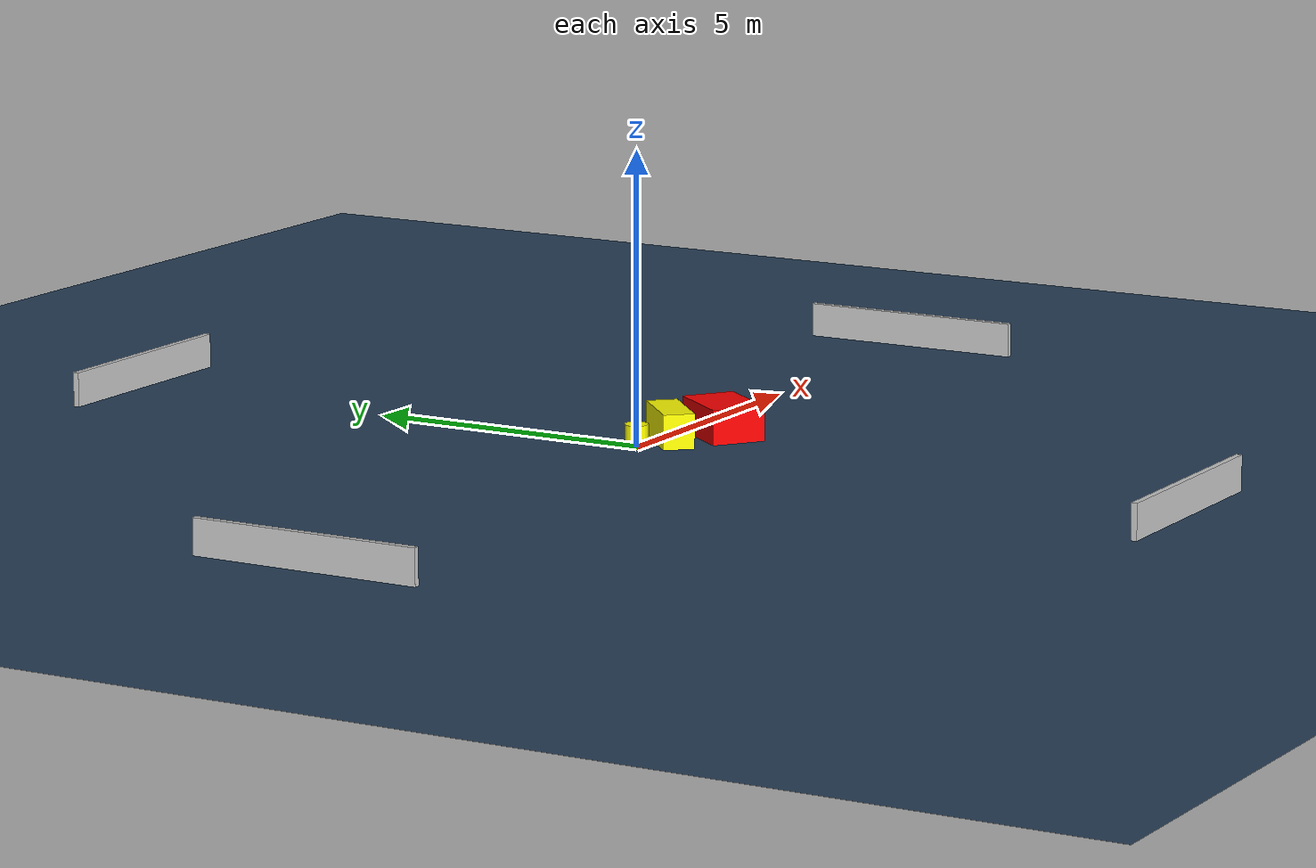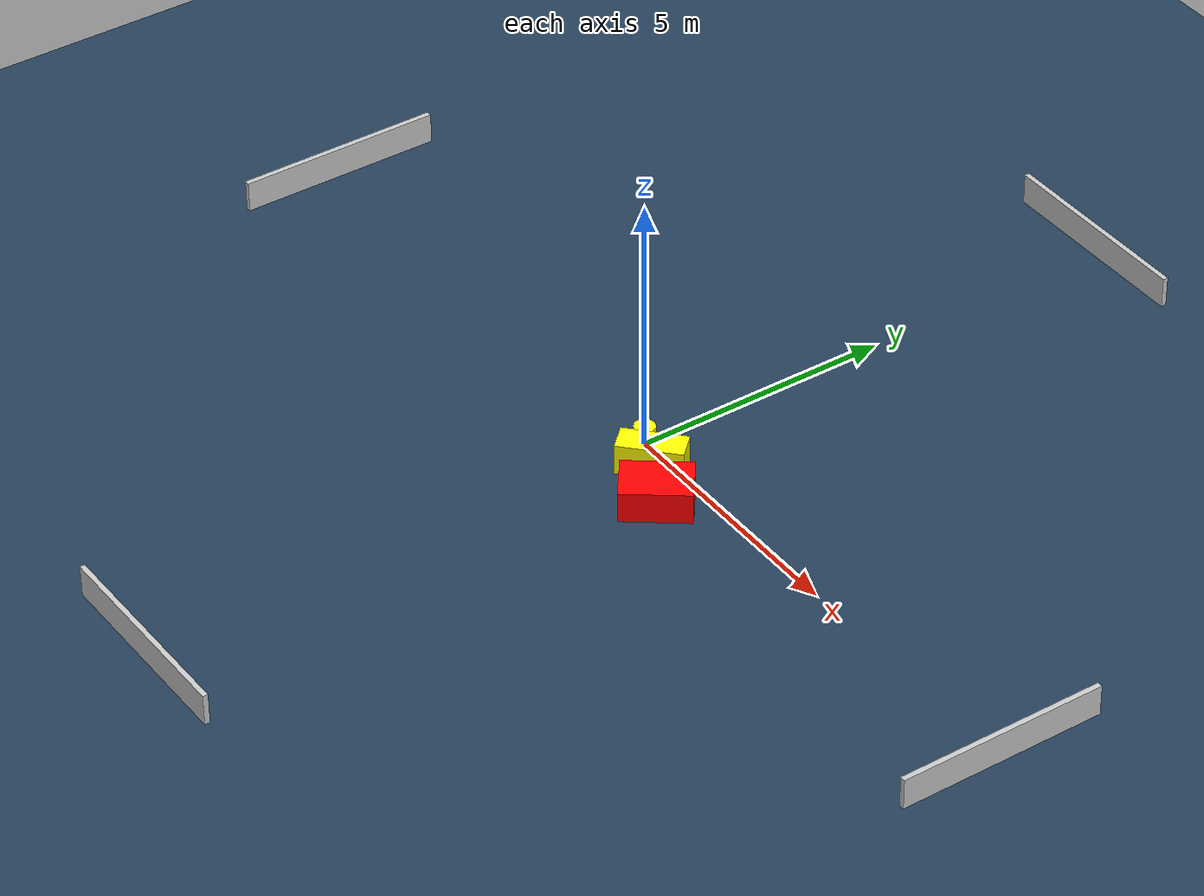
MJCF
<?xml version="1.0" ?>
<mujoco model="generated_environment">
  <option timestep="0.01" integrator="RK4" cone="elliptic"/>
  <default>
    <geom density="1"/>
  </default>
  <asset>
    <texture builtin="gradient" height="3072" name="skybox" rgb1="0.3 0.5 0.7" rgb2="0 0 0" type="skybox" width="512"/>
    <texture builtin="checker" height="300" name="groundplane" rgb1="0.2 0.3 0.4" rgb2="0.1 0.2 0.3" type="2d" width="300"/>
    <material name="groundplane" reflectance="0.2" texrepeat="5 5" texture="groundplane"/>
  </asset>
  <worldbody>
    <light dir="0 0 -1" directional="true" pos="0 0 1.5"/>
    <geom condim="3" friction="0.5 0.005 0.001" material="groundplane" name="floor" pos="0 0 0" size="0 0 0.05" type="plane"/>
    <body name="walls">
      <geom name="wall_1" condim="4" pos="-10.0 0.0 0.3" rgba="0.800000011920929 0.800000011920929 0.800000011920929 1.0" size="0.05 2.0 0.3" type="box"/>
      <geom name="wall_2" condim="4" pos="10.0 0.0 0.3" rgba="0.800000011920929 0.800000011920929 0.800000011920929 1.0" size="0.05 2.0 0.3" type="box"/>
      <geom name="wall_3" condim="4" pos="0.0 -10.0 0.3" rgba="0.800000011920929 0.800000011920929 0.800000011920929 1.0" size="2.0 0.05 0.3" type="box"/>
      <geom name="wall_4" condim="4" pos="0.0 10.0 0.3" rgba="0.800000011920929 0.800000011920929 0.800000011920929 1.0" size="2.0 0.05 0.3" type="box"/>
    </body>
    <body name="robot">
      <joint name="joint_x" type="slide" pos="0 0 0" axis="1 0 0"/>
      <joint name="joint_y" type="slide" pos="0 0 0" axis="0 1 0"/>
      <geom name="robot" type="cylinder" pos="0.0 0.0 0.2" size="0.2 0.2 0.0" mass="5.0" friction="1.0 0.005 0.0001" condim="4" rgba="1.0 1.0 0.0 1.0"/>
    </body>
    <body name="obstacle_1_movable">
      <geom name="obstacle_1_movable" condim="4" pos="0.6390617801211961 -0.2881863107586737 0.3" euler="0 0 133.21386637036335" friction="0.0 0.005 0.001" rgba="1.0 1.0 0.0 1.0" size="0.26678695724680057 0.614178388718086 0.3" type="box" mass="0.1"/>
      <joint type="free"/>
    </body>
    <body name="obstacle_2_static">
      <geom name="obstacle_2_static" condim="4" pos="1.5155018183206501 -0.8104680754855106 0.3" euler="0 0 322.8415788795753" friction="0.0 0.005 0.001" rgba="1.0 0.0 0.0 1.0" size="0.4672621415891289 0.6515714819617349 0.3" type="box"/>
    </body>
  </worldbody>
  <actuator>
    <motor name="actuator_x" joint="joint_x" gear="1" ctrlrange="-1 1"/>
    <motor name="actuator_y" joint="joint_y" gear="1" ctrlrange="-1 1"/>
  </actuator>
</mujoco>
